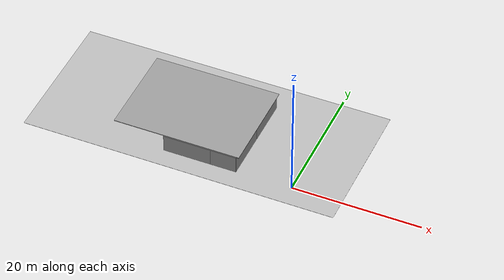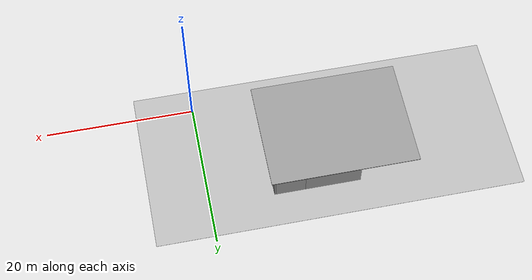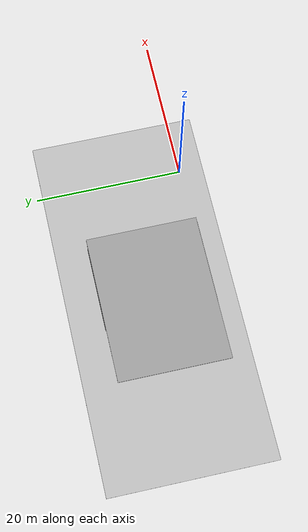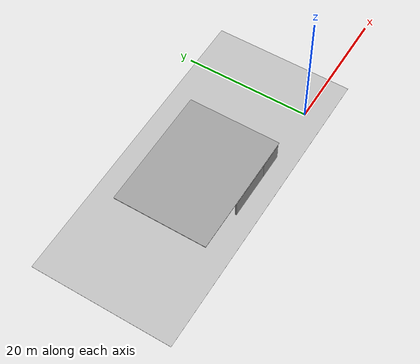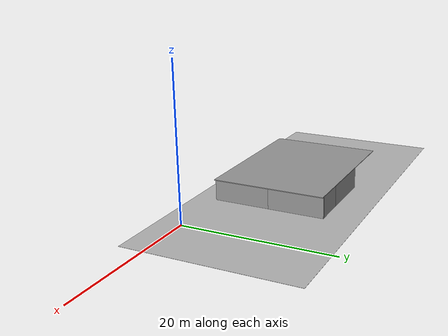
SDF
<sdf version="1.7">
 <world name="default">
  <model name="ceiling">
   <pose>-2.97 11.25 3 3.14159 -0 3.14159</pose>
   <static>1</static>
   <link name="link">
    <visual name="visual">
     <geometry><plane><normal>0 0 1</normal><size>49.5 22.5</size></plane></geometry>
     <material>
      <script>
       <uri>model://media/materials/scripts/</uri>
       <uri>model://media/materials/textures/</uri>
       <name>ServiceSim/Ceiling</name>
      </script>
     </material>
    </visual>
   </link>
  </model>
  <model name="floor">
   <pose>-17 8 -0.001 0 -0 0</pose>
   <static>1</static>
   <link name="link">
    <visual name="visual">
     <geometry><plane><normal>0 0 1</normal><size>49.5 22.5</size></plane></geometry>
     <material>
      <script>
       <uri>model://media/materials/scripts/</uri>
       <uri>model://media/materials/textures/</uri>
       <name>ServiceSim/Hallway</name>
      </script>
     </material>
    </visual>
    <collision name="collision">
     <geometry><plane><normal>0 0 1</normal><size>49.5 22.5</size></plane></geometry>
     <surface><friction><ode><mu>1</mu><mu2>1</mu2></ode></friction></surface>
    </collision>
   </link>
  </model>
  <model name="grey_wall_clone">
   <static>1</static>
   <link name="link">
    <pose>0 0 1.4 0 -0 0</pose>
    <collision name="collision"><geometry><box><size>7.5 0.2 2.8</size></box></geometry></collision>
    <visual name="visual">
     <cast_shadows>0</cast_shadows>
     <geometry><box><size>7.5 0.2 2.8</size></box></geometry>
     <material>
      <script>
       <uri>model://grey_wall/materials/scripts</uri>
       <uri>model://grey_wall/materials/textures</uri>
       <name>vrc/grey_wall</name>
      </script>
     </material>
    </visual>
   </link>
   <pose>-16.5505 -0.150786 0 0 -0 0</pose>
  </model>
  <model name="grey_wall_1_clone_0_clone_clone">
   <static>1</static>
   <link name="link">
    <pose>0 0 1.4 0 -0 0</pose>
    <collision name="collision"><geometry><box><size>7.5 0.2 2.8</size></box></geometry></collision>
    <visual name="visual">
     <cast_shadows>0</cast_shadows>
     <geometry><box><size>7.5 0.2 2.8</size></box></geometry>
     <material>
      <script>
       <uri>model://grey_wall/materials/scripts</uri>
       <uri>model://grey_wall/materials/textures</uri>
       <name>vrc/grey_wall</name>
      </script>
     </material>
    </visual>
   </link>
   <pose>-16.6066 14.6576 0 0 -0 0</pose>
  </model>
  <model name="grey_wall_1_clone_1_clone">
   <link name="link">
    <pose>0 0 1.4 0 -0 0</pose>
    <inertial>
     <mass>1</mass>
     <inertia><ixx>1</ixx><ixy>0</ixy><ixz>0</ixz><iyy>1</iyy><iyz>0</iyz><izz>1</izz></inertia>
    </inertial>
    <visual name="visual">
     <cast_shadows>0</cast_shadows>
     <geometry><box><size>4 0.2 2.8</size></box></geometry>
     <material>
      <script>
       <uri>model://grey_wall/materials/scripts</uri>
       <uri>model://grey_wall/materials/textures</uri>
       <name>vrc/grey_wall</name>
      </script>
      <shader type="pixel"><normal_map>__default__</normal_map></shader>
      <ambient>1 1 1 1</ambient>
      <diffuse>1 1 1 1</diffuse>
      <specular>0 0 0 1</specular>
      <emissive>0 0 0 1</emissive>
     </material>
    </visual>
    <collision name="collision">
     <geometry><box><size>4 0.2 2.8</size></box></geometry>
     <surface>
      <friction>
       <ode><mu>1</mu><mu2>1</mu2><fdir1>0 0 0</fdir1><slip1>0</slip1><slip2>0</slip2></ode>
       <torsional>
        <coefficient>1</coefficient>
        <patch_radius>0</patch_radius>
        <surface_radius>0</surface_radius>
        <use_patch_radius>1</use_patch_radius>
        <ode><slip>0</slip></ode>
       </torsional>
      </friction>
      <bounce><restitution_coefficient>0</restitution_coefficient><threshold>1e+06</threshold></bounce>
      <contact>
       <collide_without_contact>0</collide_without_contact>
       <collide_without_contact_bitmask>1</collide_without_contact_bitmask>
       <collide_bitmask>1</collide_bitmask>
       <ode>
        <soft_cfm>0</soft_cfm>
        <soft_erp>0.2</soft_erp>
        <kp>1e+13</kp>
        <kd>1</kd>
        <max_vel>0.01</max_vel>
        <min_depth>0</min_depth>
       </ode>
       <bullet>
        <split_impulse>1</split_impulse>
        <split_impulse_penetration_threshold>-0.01</split_impulse_penetration_threshold>
        <soft_cfm>0</soft_cfm>
        <soft_erp>0.2</soft_erp>
        <kp>1e+13</kp>
        <kd>1</kd>
       </bullet>
      </contact>
     </surface>
    </collision>
   </link>
   <static>1</static>
   <pose>-10.8724 14.659 0 0 -0 0</pose>
  </model>
  <model name="grey_wall_1_clone_1_clone_clone">
   <link name="link">
    <pose>0 0 1.4 0 -0 0</pose>
    <inertial>
     <mass>1</mass>
     <inertia><ixx>1</ixx><ixy>0</ixy><ixz>0</ixz><iyy>1</iyy><iyz>0</iyz><izz>1</izz></inertia>
    </inertial>
    <visual name="visual">
     <cast_shadows>0</cast_shadows>
     <geometry><box><size>4 0.2 2.8</size></box></geometry>
     <material>
      <script>
       <uri>model://grey_wall/materials/scripts</uri>
       <uri>model://grey_wall/materials/textures</uri>
       <name>vrc/grey_wall</name>
      </script>
      <shader type="pixel"><normal_map>__default__</normal_map></shader>
      <ambient>1 1 1 1</ambient>
      <diffuse>1 1 1 1</diffuse>
      <specular>0 0 0 1</specular>
      <emissive>0 0 0 1</emissive>
     </material>
    </visual>
    <collision name="collision">
     <geometry><box><size>4 0.2 2.8</size></box></geometry>
     <surface>
      <friction>
       <ode><mu>1</mu><mu2>1</mu2><fdir1>0 0 0</fdir1><slip1>0</slip1><slip2>0</slip2></ode>
       <torsional>
        <coefficient>1</coefficient>
        <patch_radius>0</patch_radius>
        <surface_radius>0</surface_radius>
        <use_patch_radius>1</use_patch_radius>
        <ode><slip>0</slip></ode>
       </torsional>
      </friction>
      <bounce><restitution_coefficient>0</restitution_coefficient><threshold>1e+06</threshold></bounce>
      <contact>
       <collide_without_contact>0</collide_without_contact>
       <collide_without_contact_bitmask>1</collide_without_contact_bitmask>
       <collide_bitmask>1</collide_bitmask>
       <ode>
        <soft_cfm>0</soft_cfm>
        <soft_erp>0.2</soft_erp>
        <kp>1e+13</kp>
        <kd>1</kd>
        <max_vel>0.01</max_vel>
        <min_depth>0</min_depth>
       </ode>
       <bullet>
        <split_impulse>1</split_impulse>
        <split_impulse_penetration_threshold>-0.01</split_impulse_penetration_threshold>
        <soft_cfm>0</soft_cfm>
        <soft_erp>0.2</soft_erp>
        <kp>1e+13</kp>
        <kd>1</kd>
       </bullet>
      </contact>
     </surface>
    </collision>
   </link>
   <static>1</static>
   <pose>-10.7974 -0.148693 0 0 -0 0</pose>
  </model>
  <model name="grey_wall_clone_0_clone_clone_0">
   <static>1</static>
   <link name="link">
    <pose>0 0 1.4 0 -0 0</pose>
    <collision name="collision"><geometry><box><size>7.5 0.2 2.8</size></box></geometry></collision>
    <visual name="visual">
     <cast_shadows>0</cast_shadows>
     <geometry><box><size>7.5 0.2 2.8</size></box></geometry>
     <material>
      <script>
       <uri>model://grey_wall/materials/scripts</uri>
       <uri>model://grey_wall/materials/textures</uri>
       <name>vrc/grey_wall</name>
      </script>
     </material>
    </visual>
   </link>
   <pose>-8.79771 11.0062 0 0 -0 1.57</pose>
  </model>
  <model name="grey_wall_clone_0_clone_clone_0_clone">
   <static>1</static>
   <link name="link">
    <pose>0 0 1.4 0 -0 0</pose>
    <collision name="collision"><geometry><box><size>7.5 0.2 2.8</size></box></geometry></collision>
    <visual name="visual">
     <cast_shadows>0</cast_shadows>
     <geometry><box><size>7.5 0.2 2.8</size></box></geometry>
     <material>
      <script>
       <uri>model://grey_wall/materials/scripts</uri>
       <uri>model://grey_wall/materials/textures</uri>
       <name>vrc/grey_wall</name>
      </script>
     </material>
    </visual>
   </link>
   <pose>-8.81357 3.53095 0 0 -0 1.57</pose>
  </model>
  <model name="grey_wall_1_clone_1_clone_clone_0_clone_clone_clone_1">
   <link name="link">
    <pose>0 0 1.4 0 -0 0</pose>
    <inertial>
     <mass>1</mass>
     <inertia><ixx>1</ixx><ixy>0</ixy><ixz>0</ixz><iyy>1</iyy><iyz>0</iyz><izz>1</izz></inertia>
    </inertial>
    <visual name="visual">
     <cast_shadows>0</cast_shadows>
     <geometry><box><size>4.5 0.2 3</size></box></geometry>
     <material>
      <script>
       <uri>model://grey_wall/materials/scripts</uri>
       <uri>model://grey_wall/materials/textures</uri>
       <name>vrc/grey_wall</name>
      </script>
      <shader type="pixel"><normal_map>__default__</normal_map></shader>
      <ambient>1 1 1 1</ambient>
      <diffuse>1 1 1 1</diffuse>
      <specular>0 0 0 1</specular>
      <emissive>0 0 0 1</emissive>
     </material>
    </visual>
    <collision name="collision">
     <geometry><box><size>4.5 0.2 3</size></box></geometry>
     <surface>
      <friction>
       <ode><mu>1</mu><mu2>1</mu2><fdir1>0 0 0</fdir1><slip1>0</slip1><slip2>0</slip2></ode>
       <torsional>
        <coefficient>1</coefficient>
        <patch_radius>0</patch_radius>
        <surface_radius>0</surface_radius>
        <use_patch_radius>1</use_patch_radius>
        <ode><slip>0</slip></ode>
       </torsional>
      </friction>
      <bounce><restitution_coefficient>0</restitution_coefficient><threshold>1e+06</threshold></bounce>
      <contact>
       <collide_without_contact>0</collide_without_contact>
       <collide_without_contact_bitmask>1</collide_without_contact_bitmask>
       <collide_bitmask>1</collide_bitmask>
       <ode>
        <soft_cfm>0</soft_cfm>
        <soft_erp>0.2</soft_erp>
        <kp>1e+13</kp>
        <kd>1</kd>
        <max_vel>0.01</max_vel>
        <min_depth>0</min_depth>
       </ode>
       <bullet>
        <split_impulse>1</split_impulse>
        <split_impulse_penetration_threshold>-0.01</split_impulse_penetration_threshold>
        <soft_cfm>0</soft_cfm>
        <soft_erp>0.2</soft_erp>
        <kp>1e+13</kp>
        <kd>1</kd>
       </bullet>
      </contact>
     </surface>
    </collision>
   </link>
   <static>1</static>
   <pose>-15.7497 2.2652 0 0 -0 1.57</pose>
  </model>
  <model name="grey_wall_1_clone_1_clone_clone_0_clone_clone_clone_2">
   <link name="link">
    <pose>0 0 1.4 0 -0 0</pose>
    <inertial>
     <mass>1</mass>
     <inertia><ixx>1</ixx><ixy>0</ixy><ixz>0</ixz><iyy>1</iyy><iyz>0</iyz><izz>1</izz></inertia>
    </inertial>
    <visual name="visual">
     <cast_shadows>0</cast_shadows>
     <geometry><box><size>4.5 0.2 3</size></box></geometry>
     <material>
      <script>
       <uri>model://grey_wall/materials/scripts</uri>
       <uri>model://grey_wall/materials/textures</uri>
       <name>vrc/grey_wall</name>
      </script>
      <shader type="pixel"><normal_map>__default__</normal_map></shader>
      <ambient>1 1 1 1</ambient>
      <diffuse>1 1 1 1</diffuse>
      <specular>0 0 0 1</specular>
      <emissive>0 0 0 1</emissive>
     </material>
    </visual>
    <collision name="collision">
     <geometry><box><size>4.5 0.2 3</size></box></geometry>
     <surface>
      <friction>
       <ode><mu>1</mu><mu2>1</mu2><fdir1>0 0 0</fdir1><slip1>0</slip1><slip2>0</slip2></ode>
       <torsional>
        <coefficient>1</coefficient>
        <patch_radius>0</patch_radius>
        <surface_radius>0</surface_radius>
        <use_patch_radius>1</use_patch_radius>
        <ode><slip>0</slip></ode>
       </torsional>
      </friction>
      <bounce><restitution_coefficient>0</restitution_coefficient><threshold>1e+06</threshold></bounce>
      <contact>
       <collide_without_contact>0</collide_without_contact>
       <collide_without_contact_bitmask>1</collide_without_contact_bitmask>
       <collide_bitmask>1</collide_bitmask>
       <ode>
        <soft_cfm>0</soft_cfm>
        <soft_erp>0.2</soft_erp>
        <kp>1e+13</kp>
        <kd>1</kd>
        <max_vel>0.01</max_vel>
        <min_depth>0</min_depth>
       </ode>
       <bullet>
        <split_impulse>1</split_impulse>
        <split_impulse_penetration_threshold>-0.01</split_impulse_penetration_threshold>
        <soft_cfm>0</soft_cfm>
        <soft_erp>0.2</soft_erp>
        <kp>1e+13</kp>
        <kd>1</kd>
       </bullet>
      </contact>
     </surface>
    </collision>
   </link>
   <static>1</static>
   <pose>-15.7566 12.3182 0 0 -0 1.57</pose>
  </model>
  <model name="grey_wall_1_clone_1_clone_clone_1_clone_clone_1_clone_clone_clone">
   <link name="link">
    <pose>0 0 1.4 0 -0 0</pose>
    <inertial>
     <mass>1</mass>
     <inertia><ixx>1</ixx><ixy>0</ixy><ixz>0</ixz><iyy>1</iyy><iyz>0</iyz><izz>1</izz></inertia>
    </inertial>
    <visual name="visual">
     <cast_shadows>0</cast_shadows>
     <geometry><box><size>1.8 0.2 3</size></box></geometry>
     <material>
      <script>
       <uri>model://grey_wall/materials/scripts</uri>
       <uri>model://grey_wall/materials/textures</uri>
       <name>vrc/grey_wall</name>
      </script>
      <shader type="pixel"><normal_map>__default__</normal_map></shader>
      <ambient>1 1 1 1</ambient>
      <diffuse>1 1 1 1</diffuse>
      <specular>0 0 0 1</specular>
      <emissive>0 0 0 1</emissive>
     </material>
    </visual>
    <collision name="collision">
     <geometry><box><size>1.8 0.2 3</size></box></geometry>
     <surface>
      <friction>
       <ode><mu>1</mu><mu2>1</mu2><fdir1>0 0 0</fdir1><slip1>0</slip1><slip2>0</slip2></ode>
       <torsional>
        <coefficient>1</coefficient>
        <patch_radius>0</patch_radius>
        <surface_radius>0</surface_radius>
        <use_patch_radius>1</use_patch_radius>
        <ode><slip>0</slip></ode>
       </torsional>
      </friction>
      <bounce><restitution_coefficient>0</restitution_coefficient><threshold>1e+06</threshold></bounce>
      <contact>
       <collide_without_contact>0</collide_without_contact>
       <collide_without_contact_bitmask>1</collide_without_contact_bitmask>
       <collide_bitmask>1</collide_bitmask>
       <ode>
        <soft_cfm>0</soft_cfm>
        <soft_erp>0.2</soft_erp>
        <kp>1e+13</kp>
        <kd>1</kd>
        <max_vel>0.01</max_vel>
        <min_depth>0</min_depth>
       </ode>
       <bullet>
        <split_impulse>1</split_impulse>
        <split_impulse_penetration_threshold>-0.01</split_impulse_penetration_threshold>
        <soft_cfm>0</soft_cfm>
        <soft_erp>0.2</soft_erp>
        <kp>1e+13</kp>
        <kd>1</kd>
       </bullet>
      </contact>
     </surface>
    </collision>
   </link>
   <static>1</static>
   <pose>-16.5699 9.95757 0 0 -0 0</pose>
  </model>
  <model name="grey_wall_1_clone_1_clone_clone_1_clone_clone_0_clone_clone">
   <link name="link">
    <pose>0 0 1.4 0 -0 0</pose>
    <inertial>
     <mass>1</mass>
     <inertia><ixx>1</ixx><ixy>0</ixy><ixz>0</ixz><iyy>1</iyy><iyz>0</iyz><izz>1</izz></inertia>
    </inertial>
    <visual name="visual">
     <cast_shadows>0</cast_shadows>
     <geometry><box><size>3.2 0.2 3</size></box></geometry>
     <material>
      <script>
       <uri>model://grey_wall/materials/scripts</uri>
       <uri>model://grey_wall/materials/textures</uri>
       <name>vrc/grey_wall</name>
      </script>
      <shader type="pixel"><normal_map>__default__</normal_map></shader>
      <ambient>1 1 1 1</ambient>
      <diffuse>1 1 1 1</diffuse>
      <specular>0 0 0 1</specular>
      <emissive>0 0 0 1</emissive>
     </material>
    </visual>
    <collision name="collision">
     <geometry><box><size>3.2 0.2 3</size></box></geometry>
     <surface>
      <friction>
       <ode><mu>1</mu><mu2>1</mu2><fdir1>0 0 0</fdir1><slip1>0</slip1><slip2>0</slip2></ode>
       <torsional>
        <coefficient>1</coefficient>
        <patch_radius>0</patch_radius>
        <surface_radius>0</surface_radius>
        <use_patch_radius>1</use_patch_radius>
        <ode><slip>0</slip></ode>
       </torsional>
      </friction>
      <bounce><restitution_coefficient>0</restitution_coefficient><threshold>1e+06</threshold></bounce>
      <contact>
       <collide_without_contact>0</collide_without_contact>
       <collide_without_contact_bitmask>1</collide_without_contact_bitmask>
       <collide_bitmask>1</collide_bitmask>
       <ode>
        <soft_cfm>0</soft_cfm>
        <soft_erp>0.2</soft_erp>
        <kp>1e+13</kp>
        <kd>1</kd>
        <max_vel>0.01</max_vel>
        <min_depth>0</min_depth>
       </ode>
       <bullet>
        <split_impulse>1</split_impulse>
        <split_impulse_penetration_threshold>-0.01</split_impulse_penetration_threshold>
        <soft_cfm>0</soft_cfm>
        <soft_erp>0.2</soft_erp>
        <kp>1e+13</kp>
        <kd>1</kd>
       </bullet>
      </contact>
     </surface>
    </collision>
   </link>
   <static>1</static>
   <pose>-17.2692 4.55398 0 0 -0 0</pose>
  </model>
  <model name="grey_wall_1_clone_1_clone_clone_1_clone_clone_0_clone_clone_clone_clone">
   <link name="link">
    <pose>0 0 1.4 0 -0 0</pose>
    <inertial>
     <mass>1</mass>
     <inertia><ixx>1</ixx><ixy>0</ixy><ixz>0</ixz><iyy>1</iyy><iyz>0</iyz><izz>1</izz></inertia>
    </inertial>
    <visual name="visual">
     <cast_shadows>0</cast_shadows>
     <geometry><box><size>1 0.2 0.75</size></box></geometry>
     <material>
      <script>
       <uri>model://grey_wall/materials/scripts</uri>
       <uri>model://grey_wall/materials/textures</uri>
       <name>vrc/grey_wall</name>
      </script>
      <shader type="pixel"><normal_map>__default__</normal_map></shader>
      <ambient>1 1 1 1</ambient>
      <diffuse>1 1 1 1</diffuse>
      <specular>0 0 0 1</specular>
      <emissive>0 0 0 1</emissive>
     </material>
    </visual>
    <collision name="collision">
     <geometry><box><size>1 0.2 0.75</size></box></geometry>
     <surface>
      <friction>
       <ode><mu>1</mu><mu2>1</mu2><fdir1>0 0 0</fdir1><slip1>0</slip1><slip2>0</slip2></ode>
       <torsional>
        <coefficient>1</coefficient>
        <patch_radius>0</patch_radius>
        <surface_radius>0</surface_radius>
        <use_patch_radius>1</use_patch_radius>
        <ode><slip>0</slip></ode>
       </torsional>
      </friction>
      <bounce><restitution_coefficient>0</restitution_coefficient><threshold>1e+06</threshold></bounce>
      <contact>
       <collide_without_contact>0</collide_without_contact>
       <collide_without_contact_bitmask>1</collide_without_contact_bitmask>
       <collide_bitmask>1</collide_bitmask>
       <ode>
        <soft_cfm>0</soft_cfm>
        <soft_erp>0.2</soft_erp>
        <kp>1e+13</kp>
        <kd>1</kd>
        <max_vel>0.01</max_vel>
        <min_depth>0</min_depth>
       </ode>
       <bullet>
        <split_impulse>1</split_impulse>
        <split_impulse_penetration_threshold>-0.01</split_impulse_penetration_threshold>
        <soft_cfm>0</soft_cfm>
        <soft_erp>0.2</soft_erp>
        <kp>1e+13</kp>
        <kd>1</kd>
       </bullet>
      </contact>
     </surface>
    </collision>
   </link>
   <static>1</static>
   <pose>-17.9758 9.93539 1.12 0 -0 0</pose>
  </model>
  <model name="unit_box">
   <link name="link">
    <inertial>
     <mass>1</mass>
     <inertia>
      <ixx>0.166667</ixx>
      <ixy>0</ixy>
      <ixz>0</ixz>
      <iyy>0.166667</iyy>
      <iyz>0</iyz>
      <izz>0.166667</izz>
     </inertia>
    </inertial>
    <visual name="visual">
     <geometry><box><size>20 15 0.1</size></box></geometry>
     <material>
      <script><name>Gazebo/Grey</name><uri>file://media/materials/scripts/gazebo.material</uri></script>
      <shader type="pixel"><normal_map>__default__</normal_map></shader>
      <ambient>0.3 0.3 0.3 1</ambient>
      <diffuse>0.7 0.7 0.7 1</diffuse>
      <specular>0.01 0.01 0.01 1</specular>
      <emissive>0 0 0 1</emissive>
     </material>
    </visual>
    <collision name="collision">
     <geometry><box><size>20 15 0.1</size></box></geometry>
     <surface>
      <friction>
       <ode><mu>1</mu><mu2>1</mu2><fdir1>0 0 0</fdir1><slip1>0</slip1><slip2>0</slip2></ode>
       <torsional>
        <coefficient>1</coefficient>
        <patch_radius>0</patch_radius>
        <surface_radius>0</surface_radius>
        <use_patch_radius>1</use_patch_radius>
        <ode><slip>0</slip></ode>
       </torsional>
      </friction>
      <bounce><restitution_coefficient>0</restitution_coefficient><threshold>1e+06</threshold></bounce>
      <contact>
       <collide_without_contact>0</collide_without_contact>
       <collide_without_contact_bitmask>1</collide_without_contact_bitmask>
       <collide_bitmask>1</collide_bitmask>
       <ode>
        <soft_cfm>0</soft_cfm>
        <soft_erp>0.2</soft_erp>
        <kp>1e+13</kp>
        <kd>1</kd>
        <max_vel>0.01</max_vel>
        <min_depth>0</min_depth>
       </ode>
       <bullet>
        <split_impulse>1</split_impulse>
        <split_impulse_penetration_threshold>-0.01</split_impulse_penetration_threshold>
        <soft_cfm>0</soft_cfm>
        <soft_erp>0.2</soft_erp>
        <kp>1e+13</kp>
        <kd>1</kd>
       </bullet>
      </contact>
     </surface>
    </collision>
   </link>
   <static>0</static>
   <pose>-18.3 7.3 2.9 0 -0 0</pose>
  </model>
 </world>
</sdf>
